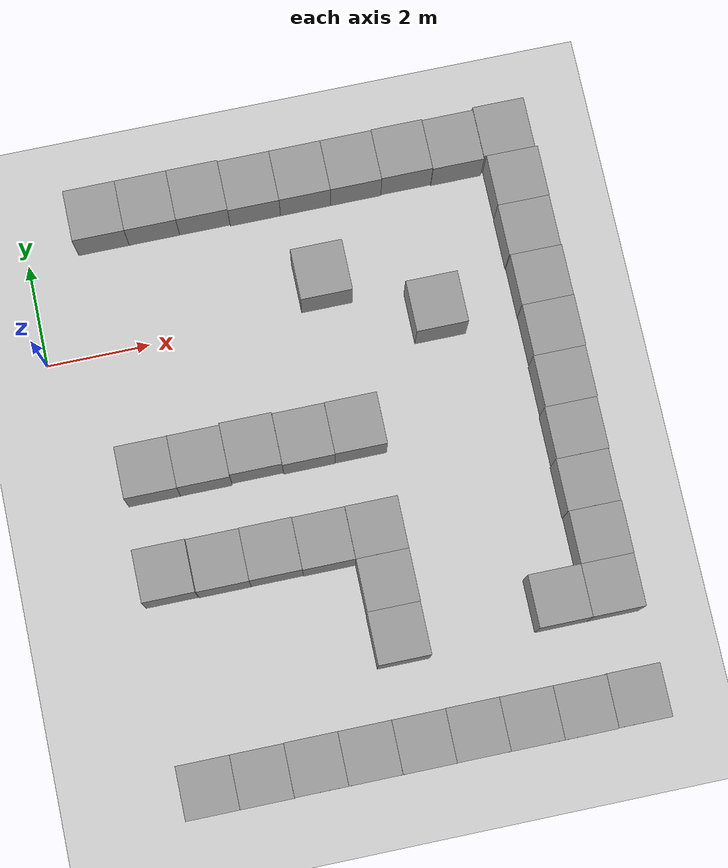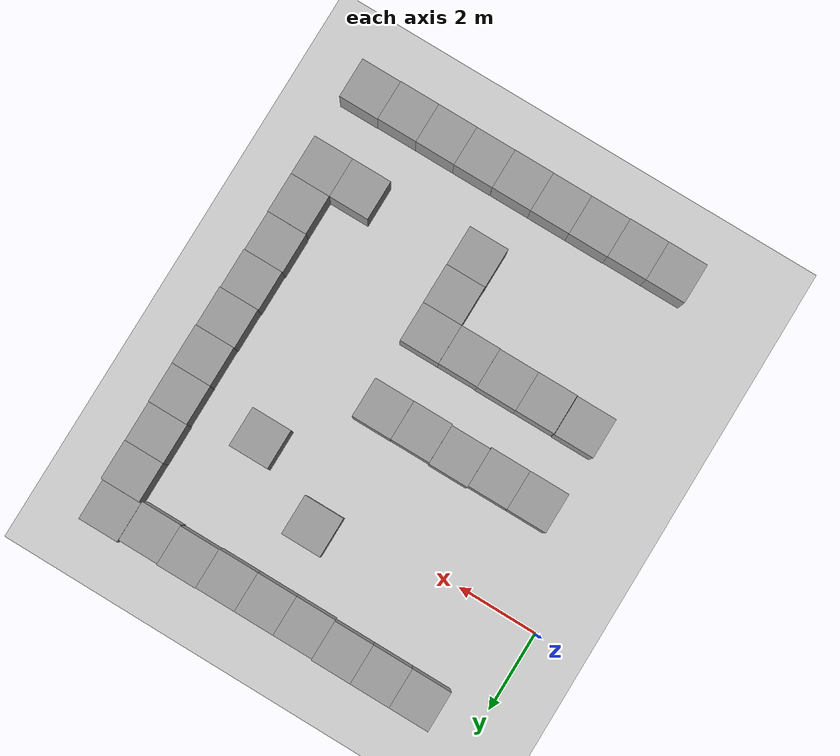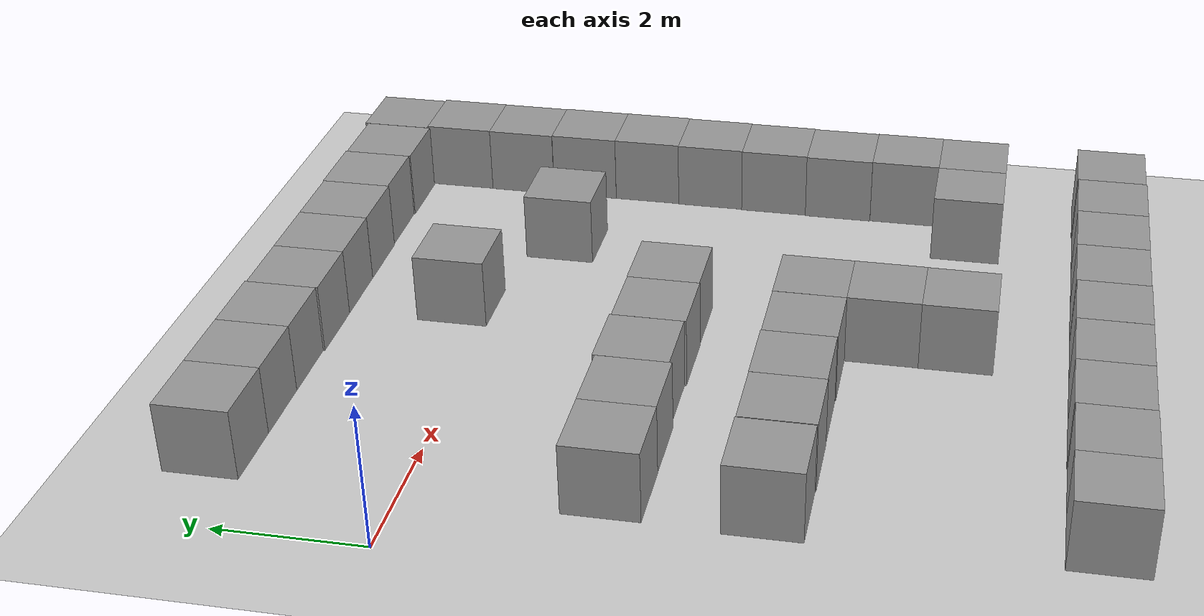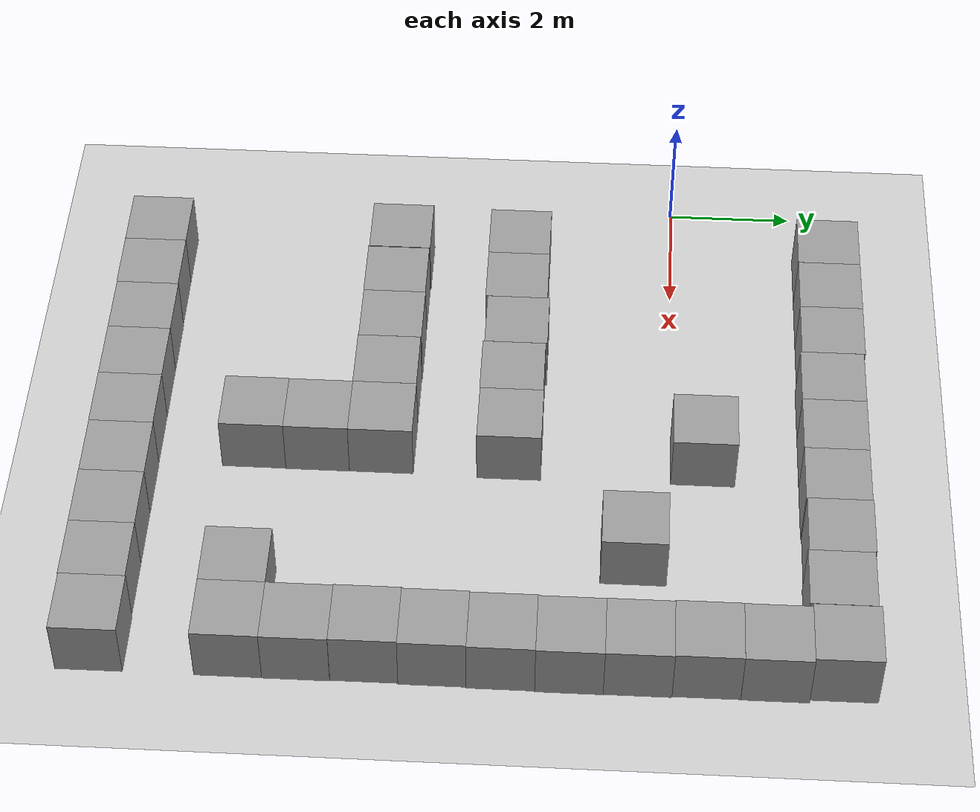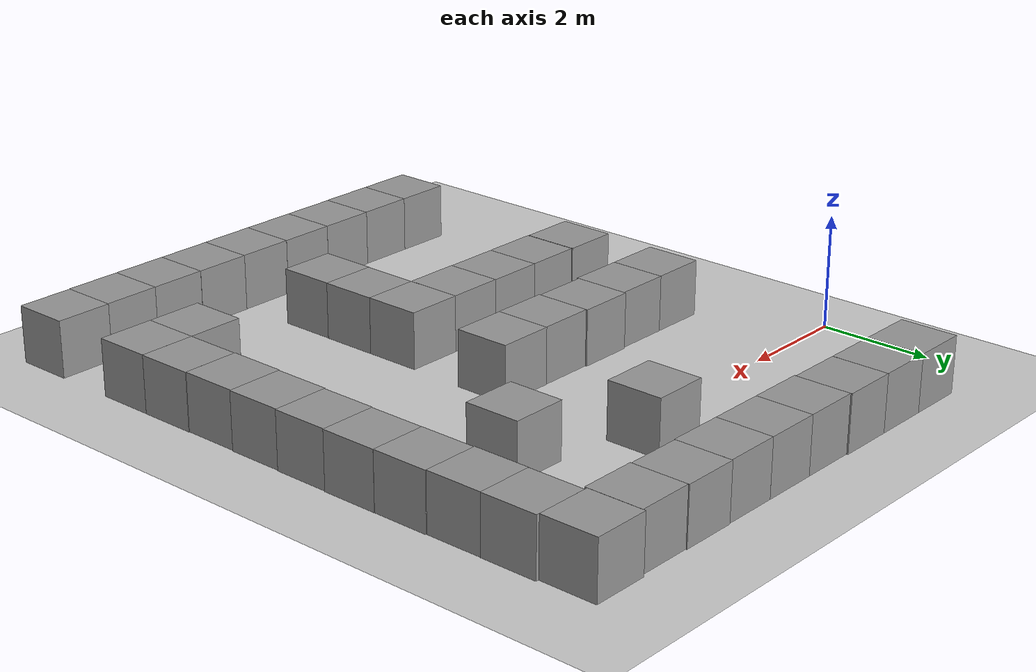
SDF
<sdf version="1.6">
 <world name="default">
  <model name="ground_plane">
   <static>1</static>
   <link name="link">
    <collision name="collision">
     <geometry><plane><normal>0 0 1</normal><size>100 100</size></plane></geometry>
     <surface>
      <contact><collide_bitmask>65535</collide_bitmask></contact>
      <friction><ode><mu>100</mu><mu2>50</mu2></ode></friction>
     </surface>
    </collision>
    <visual name="visual">
     <cast_shadows>0</cast_shadows>
     <geometry><plane><normal>0 0 1</normal><size>100 100</size></plane></geometry>
     <material>
      <script><uri>file://media/materials/scripts/gazebo.material</uri><name>Gazebo/Grey</name></script>
     </material>
    </visual>
   </link>
  </model>
  <model name="unit_box_4">
   <pose>7.51671 -8.49305 0.5 0 -0 7.2e-05</pose>
   <link name="link">
    <inertial>
     <mass>1</mass>
     <inertia>
      <ixx>0.166667</ixx>
      <ixy>0</ixy>
      <ixz>0</ixz>
      <iyy>0.166667</iyy>
      <iyz>0</iyz>
      <izz>0.166667</izz>
     </inertia>
    </inertial>
    <collision name="collision"><geometry><box><size>1 1 1</size></box></geometry></collision>
    <visual name="visual">
     <geometry><box><size>1 1 1</size></box></geometry>
     <material>
      <script><name>Gazebo/Grey</name><uri>file://media/materials/scripts/gazebo.material</uri></script>
     </material>
    </visual>
   </link>
  </model>
  <model name="unit_box_5">
   <pose>6.51666 -8.49092 0.5 0 0 -6e-06</pose>
   <link name="link">
    <inertial>
     <mass>1</mass>
     <inertia>
      <ixx>0.166667</ixx>
      <ixy>0</ixy>
      <ixz>0</ixz>
      <iyy>0.166667</iyy>
      <iyz>0</iyz>
      <izz>0.166667</izz>
     </inertia>
    </inertial>
    <collision name="collision"><geometry><box><size>1 1 1</size></box></geometry></collision>
    <visual name="visual">
     <geometry><box><size>1 1 1</size></box></geometry>
     <material>
      <script><name>Gazebo/Grey</name><uri>file://media/materials/scripts/gazebo.material</uri></script>
     </material>
    </visual>
   </link>
  </model>
  <model name="unit_box_6">
   <pose>5.51666 -8.49554 0.499995 -1e-05 0 -9e-06</pose>
   <link name="link">
    <inertial>
     <mass>1</mass>
     <inertia>
      <ixx>0.166667</ixx>
      <ixy>0</ixy>
      <ixz>0</ixz>
      <iyy>0.166667</iyy>
      <iyz>0</iyz>
      <izz>0.166667</izz>
     </inertia>
    </inertial>
    <collision name="collision"><geometry><box><size>1 1 1</size></box></geometry></collision>
    <visual name="visual">
     <geometry><box><size>1 1 1</size></box></geometry>
     <material>
      <script><name>Gazebo/Grey</name><uri>file://media/materials/scripts/gazebo.material</uri></script>
     </material>
    </visual>
   </link>
  </model>
  <model name="unit_box_7">
   <pose>4.51657 -8.49456 0.499995 -1e-05 -0 -0.000161</pose>
   <link name="link">
    <inertial>
     <mass>1</mass>
     <inertia>
      <ixx>0.166667</ixx>
      <ixy>0</ixy>
      <ixz>0</ixz>
      <iyy>0.166667</iyy>
      <iyz>0</iyz>
      <izz>0.166667</izz>
     </inertia>
    </inertial>
    <collision name="collision"><geometry><box><size>1 1 1</size></box></geometry></collision>
    <visual name="visual">
     <geometry><box><size>1 1 1</size></box></geometry>
     <material>
      <script><name>Gazebo/Grey</name><uri>file://media/materials/scripts/gazebo.material</uri></script>
     </material>
    </visual>
   </link>
  </model>
  <model name="unit_box_8">
   <pose>3.51656 -8.49374 0.5 0 -0 -0.000182</pose>
   <link name="link">
    <inertial>
     <mass>1</mass>
     <inertia>
      <ixx>0.166667</ixx>
      <ixy>0</ixy>
      <ixz>0</ixz>
      <iyy>0.166667</iyy>
      <iyz>0</iyz>
      <izz>0.166667</izz>
     </inertia>
    </inertial>
    <collision name="collision"><geometry><box><size>1 1 1</size></box></geometry></collision>
    <visual name="visual">
     <geometry><box><size>1 1 1</size></box></geometry>
     <material>
      <script><name>Gazebo/Grey</name><uri>file://media/materials/scripts/gazebo.material</uri></script>
     </material>
    </visual>
   </link>
  </model>
  <model name="unit_box_9">
   <pose>2.51649 -8.50173 0.5 0 -0 -0.000315</pose>
   <link name="link">
    <inertial>
     <mass>1</mass>
     <inertia>
      <ixx>0.166667</ixx>
      <ixy>0</ixy>
      <ixz>0</ixz>
      <iyy>0.166667</iyy>
      <iyz>0</iyz>
      <izz>0.166667</izz>
     </inertia>
    </inertial>
    <collision name="collision"><geometry><box><size>1 1 1</size></box></geometry></collision>
    <visual name="visual">
     <geometry><box><size>1 1 1</size></box></geometry>
     <material>
      <script><name>Gazebo/Grey</name><uri>file://media/materials/scripts/gazebo.material</uri></script>
     </material>
    </visual>
   </link>
  </model>
  <model name="unit_box_10">
   <pose>1.51648 -8.50193 0.5 0 0 -0.000329</pose>
   <link name="link">
    <inertial>
     <mass>1</mass>
     <inertia>
      <ixx>0.166667</ixx>
      <ixy>0</ixy>
      <ixz>0</ixz>
      <iyy>0.166667</iyy>
      <iyz>0</iyz>
      <izz>0.166667</izz>
     </inertia>
    </inertial>
    <collision name="collision"><geometry><box><size>1 1 1</size></box></geometry></collision>
    <visual name="visual">
     <geometry><box><size>1 1 1</size></box></geometry>
     <material>
      <script><name>Gazebo/Grey</name><uri>file://media/materials/scripts/gazebo.material</uri></script>
     </material>
    </visual>
   </link>
  </model>
  <model name="unit_box_33">
   <pose>1.48614 2.54241 0.5 0 -0 0.000625</pose>
   <link name="link">
    <inertial>
     <mass>1</mass>
     <inertia>
      <ixx>0.166667</ixx>
      <ixy>0</ixy>
      <ixz>0</ixz>
      <iyy>0.166667</iyy>
      <iyz>0</iyz>
      <izz>0.166667</izz>
     </inertia>
    </inertial>
    <collision name="collision"><geometry><box><size>1 1 1</size></box></geometry></collision>
    <visual name="visual">
     <geometry><box><size>1 1 1</size></box></geometry>
     <material>
      <script><name>Gazebo/Grey</name><uri>file://media/materials/scripts/gazebo.material</uri></script>
     </material>
    </visual>
   </link>
  </model>
  <model name="unit_box_34">
   <pose>2.48617 2.54318 0.5 0 -0 0.000666</pose>
   <link name="link">
    <inertial>
     <mass>1</mass>
     <inertia>
      <ixx>0.166667</ixx>
      <ixy>0</ixy>
      <ixz>0</ixz>
      <iyy>0.166667</iyy>
      <iyz>0</iyz>
      <izz>0.166667</izz>
     </inertia>
    </inertial>
    <collision name="collision"><geometry><box><size>1 1 1</size></box></geometry></collision>
    <visual name="visual">
     <geometry><box><size>1 1 1</size></box></geometry>
     <material>
      <script><name>Gazebo/Grey</name><uri>file://media/materials/scripts/gazebo.material</uri></script>
     </material>
    </visual>
   </link>
  </model>
  <model name="unit_box_35">
   <pose>3.48621 2.54399 0.499985 -1e-05 -0 0.000745</pose>
   <link name="link">
    <inertial>
     <mass>1</mass>
     <inertia>
      <ixx>0.166667</ixx>
      <ixy>0</ixy>
      <ixz>0</ixz>
      <iyy>0.166667</iyy>
      <iyz>0</iyz>
      <izz>0.166667</izz>
     </inertia>
    </inertial>
    <collision name="collision"><geometry><box><size>1 1 1</size></box></geometry></collision>
    <visual name="visual">
     <geometry><box><size>1 1 1</size></box></geometry>
     <material>
      <script><name>Gazebo/Grey</name><uri>file://media/materials/scripts/gazebo.material</uri></script>
     </material>
    </visual>
   </link>
  </model>
  <model name="unit_box_36">
   <pose>4.48625 2.52058 0.5 0 -0 0.000752</pose>
   <link name="link">
    <inertial>
     <mass>1</mass>
     <inertia>
      <ixx>0.166667</ixx>
      <ixy>0</ixy>
      <ixz>0</ixz>
      <iyy>0.166667</iyy>
      <iyz>0</iyz>
      <izz>0.166667</izz>
     </inertia>
    </inertial>
    <collision name="collision"><geometry><box><size>1 1 1</size></box></geometry></collision>
    <visual name="visual">
     <geometry><box><size>1 1 1</size></box></geometry>
     <material>
      <script><name>Gazebo/Grey</name><uri>file://media/materials/scripts/gazebo.material</uri></script>
     </material>
    </visual>
   </link>
  </model>
  <model name="unit_box_37">
   <pose>5.48625 2.52243 0.499995 1e-05 -0 0.000751</pose>
   <link name="link">
    <inertial>
     <mass>1</mass>
     <inertia>
      <ixx>0.166667</ixx>
      <ixy>0</ixy>
      <ixz>0</ixz>
      <iyy>0.166667</iyy>
      <iyz>0</iyz>
      <izz>0.166667</izz>
     </inertia>
    </inertial>
    <collision name="collision"><geometry><box><size>1 1 1</size></box></geometry></collision>
    <visual name="visual">
     <geometry><box><size>1 1 1</size></box></geometry>
     <material>
      <script><name>Gazebo/Grey</name><uri>file://media/materials/scripts/gazebo.material</uri></script>
     </material>
    </visual>
   </link>
  </model>
  <model name="unit_box_38">
   <pose>8.51671 -8.49289 0.5 0 -0 7.2e-05</pose>
   <link name="link">
    <inertial>
     <mass>1</mass>
     <inertia>
      <ixx>0.166667</ixx>
      <ixy>0</ixy>
      <ixz>0</ixz>
      <iyy>0.166667</iyy>
      <iyz>0</iyz>
      <izz>0.166667</izz>
     </inertia>
    </inertial>
    <collision name="collision"><geometry><box><size>1 1 1</size></box></geometry></collision>
    <visual name="visual">
     <geometry><box><size>1 1 1</size></box></geometry>
     <material>
      <script><name>Gazebo/Grey</name><uri>file://media/materials/scripts/gazebo.material</uri></script>
     </material>
    </visual>
   </link>
  </model>
  <model name="unit_box_39">
   <pose>6.48625 2.52296 0.499995 1e-05 -0 0.000753</pose>
   <link name="link">
    <inertial>
     <mass>1</mass>
     <inertia>
      <ixx>0.166667</ixx>
      <ixy>0</ixy>
      <ixz>0</ixz>
      <iyy>0.166667</iyy>
      <iyz>0</iyz>
      <izz>0.166667</izz>
     </inertia>
    </inertial>
    <collision name="collision"><geometry><box><size>1 1 1</size></box></geometry></collision>
    <visual name="visual">
     <geometry><box><size>1 1 1</size></box></geometry>
     <material>
      <script><name>Gazebo/Grey</name><uri>file://media/materials/scripts/gazebo.material</uri></script>
     </material>
    </visual>
   </link>
  </model>
  <model name="unit_box_40">
   <pose>7.48625 2.5373 0.5 0 -0 0.000752</pose>
   <link name="link">
    <inertial>
     <mass>1</mass>
     <inertia>
      <ixx>0.166667</ixx>
      <ixy>0</ixy>
      <ixz>0</ixz>
      <iyy>0.166667</iyy>
      <iyz>0</iyz>
      <izz>0.166667</izz>
     </inertia>
    </inertial>
    <collision name="collision"><geometry><box><size>1 1 1</size></box></geometry></collision>
    <visual name="visual">
     <geometry><box><size>1 1 1</size></box></geometry>
     <material>
      <script><name>Gazebo/Grey</name><uri>file://media/materials/scripts/gazebo.material</uri></script>
     </material>
    </visual>
   </link>
  </model>
  <model name="unit_box_41">
   <pose>8.48626 2.5204 0.499995 -1e-05 -0 0.000752</pose>
   <link name="link">
    <inertial>
     <mass>1</mass>
     <inertia>
      <ixx>0.166667</ixx>
      <ixy>0</ixy>
      <ixz>0</ixz>
      <iyy>0.166667</iyy>
      <iyz>0</iyz>
      <izz>0.166667</izz>
     </inertia>
    </inertial>
    <collision name="collision"><geometry><box><size>1 1 1</size></box></geometry></collision>
    <visual name="visual">
     <geometry><box><size>1 1 1</size></box></geometry>
     <material>
      <script><name>Gazebo/Grey</name><uri>file://media/materials/scripts/gazebo.material</uri></script>
     </material>
    </visual>
   </link>
  </model>
  <model name="unit_box_42">
   <pose>9.48835 2.57045 0.499995 0 1e-05 0.000765</pose>
   <link name="link">
    <inertial>
     <mass>1</mass>
     <inertia>
      <ixx>0.166667</ixx>
      <ixy>0</ixy>
      <ixz>0</ixz>
      <iyy>0.166667</iyy>
      <iyz>0</iyz>
      <izz>0.166667</izz>
     </inertia>
    </inertial>
    <collision name="collision"><geometry><box><size>1 1 1</size></box></geometry></collision>
    <visual name="visual">
     <geometry><box><size>1 1 1</size></box></geometry>
     <material>
      <script><name>Gazebo/Grey</name><uri>file://media/materials/scripts/gazebo.material</uri></script>
     </material>
    </visual>
   </link>
  </model>
  <model name="unit_box_43">
   <pose>9.53924 1.57039 0.5 0 -0 0.000573</pose>
   <link name="link">
    <inertial>
     <mass>1</mass>
     <inertia>
      <ixx>0.166667</ixx>
      <ixy>0</ixy>
      <ixz>0</ixz>
      <iyy>0.166667</iyy>
      <iyz>0</iyz>
      <izz>0.166667</izz>
     </inertia>
    </inertial>
    <collision name="collision"><geometry><box><size>1 1 1</size></box></geometry></collision>
    <visual name="visual">
     <geometry><box><size>1 1 1</size></box></geometry>
     <material>
      <script><name>Gazebo/Grey</name><uri>file://media/materials/scripts/gazebo.material</uri></script>
     </material>
    </visual>
   </link>
  </model>
  <model name="unit_box_44">
   <pose>9.53423 0.57037 0.499995 1e-05 0 0.000561</pose>
   <link name="link">
    <inertial>
     <mass>1</mass>
     <inertia>
      <ixx>0.166667</ixx>
      <ixy>0</ixy>
      <ixz>0</ixz>
      <iyy>0.166667</iyy>
      <iyz>0</iyz>
      <izz>0.166667</izz>
     </inertia>
    </inertial>
    <collision name="collision"><geometry><box><size>1 1 1</size></box></geometry></collision>
    <visual name="visual">
     <geometry><box><size>1 1 1</size></box></geometry>
     <material>
      <script><name>Gazebo/Grey</name><uri>file://media/materials/scripts/gazebo.material</uri></script>
     </material>
    </visual>
   </link>
  </model>
  <model name="unit_box_45">
   <pose>9.54931 -0.429615 0.499996 -9e-06 0 0.000562</pose>
   <link name="link">
    <inertial>
     <mass>1</mass>
     <inertia>
      <ixx>0.166667</ixx>
      <ixy>0</ixy>
      <ixz>0</ixz>
      <iyy>0.166667</iyy>
      <iyz>0</iyz>
      <izz>0.166667</izz>
     </inertia>
    </inertial>
    <collision name="collision"><geometry><box><size>1 1 1</size></box></geometry></collision>
    <visual name="visual">
     <geometry><box><size>1 1 1</size></box></geometry>
     <material>
      <script><name>Gazebo/Grey</name><uri>file://media/materials/scripts/gazebo.material</uri></script>
     </material>
    </visual>
   </link>
  </model>
  <model name="unit_box_46">
   <pose>9.5543 -1.42962 0.499995 9e-06 -0 0.000565</pose>
   <link name="link">
    <inertial>
     <mass>1</mass>
     <inertia>
      <ixx>0.166667</ixx>
      <ixy>0</ixy>
      <ixz>0</ixz>
      <iyy>0.166667</iyy>
      <iyz>0</iyz>
      <izz>0.166667</izz>
     </inertia>
    </inertial>
    <collision name="collision"><geometry><box><size>1 1 1</size></box></geometry></collision>
    <visual name="visual">
     <geometry><box><size>1 1 1</size></box></geometry>
     <material>
      <script><name>Gazebo/Grey</name><uri>file://media/materials/scripts/gazebo.material</uri></script>
     </material>
    </visual>
   </link>
  </model>
  <model name="unit_box_47">
   <pose>9.54231 -2.42964 0.5 0 -0 0.000541</pose>
   <link name="link">
    <inertial>
     <mass>1</mass>
     <inertia>
      <ixx>0.166667</ixx>
      <ixy>0</ixy>
      <ixz>0</ixz>
      <iyy>0.166667</iyy>
      <iyz>0</iyz>
      <izz>0.166667</izz>
     </inertia>
    </inertial>
    <collision name="collision"><geometry><box><size>1 1 1</size></box></geometry></collision>
    <visual name="visual">
     <geometry><box><size>1 1 1</size></box></geometry>
     <material>
      <script><name>Gazebo/Grey</name><uri>file://media/materials/scripts/gazebo.material</uri></script>
     </material>
    </visual>
   </link>
  </model>
  <model name="unit_box_48">
   <pose>9.52698 -3.42969 0.5 0 -0 0.00047</pose>
   <link name="link">
    <inertial>
     <mass>1</mass>
     <inertia>
      <ixx>0.166667</ixx>
      <ixy>0</ixy>
      <ixz>0</ixz>
      <iyy>0.166667</iyy>
      <iyz>0</iyz>
      <izz>0.166667</izz>
     </inertia>
    </inertial>
    <collision name="collision"><geometry><box><size>1 1 1</size></box></geometry></collision>
    <visual name="visual">
     <geometry><box><size>1 1 1</size></box></geometry>
     <material>
      <script><name>Gazebo/Grey</name><uri>file://media/materials/scripts/gazebo.material</uri></script>
     </material>
    </visual>
   </link>
  </model>
  <model name="unit_box_49">
   <pose>9.51672 -8.48319 0.5 0 -0 7.2e-05</pose>
   <link name="link">
    <inertial>
     <mass>1</mass>
     <inertia>
      <ixx>0.166667</ixx>
      <ixy>0</ixy>
      <ixz>0</ixz>
      <iyy>0.166667</iyy>
      <iyz>0</iyz>
      <izz>0.166667</izz>
     </inertia>
    </inertial>
    <collision name="collision"><geometry><box><size>1 1 1</size></box></geometry></collision>
    <visual name="visual">
     <geometry><box><size>1 1 1</size></box></geometry>
     <material>
      <script><name>Gazebo/Grey</name><uri>file://media/materials/scripts/gazebo.material</uri></script>
     </material>
    </visual>
   </link>
  </model>
  <model name="unit_box_50">
   <pose>9.51203 -4.42972 0.5 0 -0 0.00042</pose>
   <link name="link">
    <inertial>
     <mass>1</mass>
     <inertia>
      <ixx>0.166667</ixx>
      <ixy>0</ixy>
      <ixz>0</ixz>
      <iyy>0.166667</iyy>
      <iyz>0</iyz>
      <izz>0.166667</izz>
     </inertia>
    </inertial>
    <collision name="collision"><geometry><box><size>1 1 1</size></box></geometry></collision>
    <visual name="visual">
     <geometry><box><size>1 1 1</size></box></geometry>
     <material>
      <script><name>Gazebo/Grey</name><uri>file://media/materials/scripts/gazebo.material</uri></script>
     </material>
    </visual>
   </link>
  </model>
  <model name="unit_box_51">
   <pose>9.5235 -5.42992 0.499995 -1e-05 0 2.6e-05</pose>
   <link name="link">
    <inertial>
     <mass>1</mass>
     <inertia>
      <ixx>0.166667</ixx>
      <ixy>0</ixy>
      <ixz>0</ixz>
      <iyy>0.166667</iyy>
      <iyz>0</iyz>
      <izz>0.166667</izz>
     </inertia>
    </inertial>
    <collision name="collision"><geometry><box><size>1 1 1</size></box></geometry></collision>
    <visual name="visual">
     <geometry><box><size>1 1 1</size></box></geometry>
     <material>
      <script><name>Gazebo/Grey</name><uri>file://media/materials/scripts/gazebo.material</uri></script>
     </material>
    </visual>
   </link>
  </model>
  <model name="unit_box_52">
   <pose>9.52024 -6.43002 0.499995 0 1e-05 0.000119</pose>
   <link name="link">
    <inertial>
     <mass>1</mass>
     <inertia>
      <ixx>0.166667</ixx>
      <ixy>0</ixy>
      <ixz>0</ixz>
      <iyy>0.166667</iyy>
      <iyz>0</iyz>
      <izz>0.166667</izz>
     </inertia>
    </inertial>
    <collision name="collision"><geometry><box><size>1 1 1</size></box></geometry></collision>
    <visual name="visual">
     <geometry><box><size>1 1 1</size></box></geometry>
     <material>
      <script><name>Gazebo/Grey</name><uri>file://media/materials/scripts/gazebo.material</uri></script>
     </material>
    </visual>
   </link>
  </model>
  <model name="unit_box_53">
   <pose>8.52018 -6.42978 0.499995 0 1e-05 0.000194</pose>
   <link name="link">
    <inertial>
     <mass>1</mass>
     <inertia>
      <ixx>0.166667</ixx>
      <ixy>0</ixy>
      <ixz>0</ixz>
      <iyy>0.166667</iyy>
      <iyz>0</iyz>
      <izz>0.166667</izz>
     </inertia>
    </inertial>
    <collision name="collision"><geometry><box><size>1 1 1</size></box></geometry></collision>
    <visual name="visual">
     <geometry><box><size>1 1 1</size></box></geometry>
     <material>
      <script><name>Gazebo/Grey</name><uri>file://media/materials/scripts/gazebo.material</uri></script>
     </material>
    </visual>
   </link>
  </model>
  <model name="unit_box_55">
   <pose>1.47948 -4.48044 0.499995 1e-05 -0 0</pose>
   <link name="link">
    <inertial>
     <mass>1</mass>
     <inertia>
      <ixx>0.166667</ixx>
      <ixy>0</ixy>
      <ixz>0</ixz>
      <iyy>0.166667</iyy>
      <iyz>0</iyz>
      <izz>0.166667</izz>
     </inertia>
    </inertial>
    <collision name="collision"><geometry><box><size>1 1 1</size></box></geometry></collision>
    <visual name="visual">
     <geometry><box><size>1 1 1</size></box></geometry>
     <material>
      <script><name>Gazebo/Grey</name><uri>file://media/materials/scripts/gazebo.material</uri></script>
     </material>
    </visual>
   </link>
  </model>
  <model name="unit_box_56">
   <pose>2.4906 -4.49051 0.499995 -1e-05 0 0.000346</pose>
   <link name="link">
    <inertial>
     <mass>1</mass>
     <inertia>
      <ixx>0.166667</ixx>
      <ixy>0</ixy>
      <ixz>0</ixz>
      <iyy>0.166667</iyy>
      <iyz>0</iyz>
      <izz>0.166667</izz>
     </inertia>
    </inertial>
    <collision name="collision"><geometry><box><size>1 1 1</size></box></geometry></collision>
    <visual name="visual">
     <geometry><box><size>1 1 1</size></box></geometry>
     <material>
      <script><name>Gazebo/Grey</name><uri>file://media/materials/scripts/gazebo.material</uri></script>
     </material>
    </visual>
   </link>
  </model>
  <model name="unit_box_57">
   <pose>3.4906 -4.48578 0.5 0 -0 0.000346</pose>
   <link name="link">
    <inertial>
     <mass>1</mass>
     <inertia>
      <ixx>0.166667</ixx>
      <ixy>0</ixy>
      <ixz>0</ixz>
      <iyy>0.166667</iyy>
      <iyz>0</iyz>
      <izz>0.166667</izz>
     </inertia>
    </inertial>
    <collision name="collision"><geometry><box><size>1 1 1</size></box></geometry></collision>
    <visual name="visual">
     <geometry><box><size>1 1 1</size></box></geometry>
     <material>
      <script><name>Gazebo/Grey</name><uri>file://media/materials/scripts/gazebo.material</uri></script>
     </material>
    </visual>
   </link>
  </model>
  <model name="unit_box_58">
   <pose>4.49069 -4.49432 0.499995 0 1e-05 0.000439</pose>
   <link name="link">
    <inertial>
     <mass>1</mass>
     <inertia>
      <ixx>0.166667</ixx>
      <ixy>0</ixy>
      <ixz>0</ixz>
      <iyy>0.166667</iyy>
      <iyz>0</iyz>
      <izz>0.166667</izz>
     </inertia>
    </inertial>
    <collision name="collision"><geometry><box><size>1 1 1</size></box></geometry></collision>
    <visual name="visual">
     <geometry><box><size>1 1 1</size></box></geometry>
     <material>
      <script><name>Gazebo/Grey</name><uri>file://media/materials/scripts/gazebo.material</uri></script>
     </material>
    </visual>
   </link>
  </model>
  <model name="unit_box_59">
   <pose>5.49118 -4.49174 0.499995 0 -1e-05 -0.000241</pose>
   <link name="link">
    <inertial>
     <mass>1</mass>
     <inertia>
      <ixx>0.166667</ixx>
      <ixy>0</ixy>
      <ixz>0</ixz>
      <iyy>0.166667</iyy>
      <iyz>0</iyz>
      <izz>0.166667</izz>
     </inertia>
    </inertial>
    <collision name="collision"><geometry><box><size>1 1 1</size></box></geometry></collision>
    <visual name="visual">
     <geometry><box><size>1 1 1</size></box></geometry>
     <material>
      <script><name>Gazebo/Grey</name><uri>file://media/materials/scripts/gazebo.material</uri></script>
     </material>
    </visual>
   </link>
  </model>
  <model name="unit_box_60">
   <pose>5.49273 -5.49186 0.499995 1e-05 -0 -0.000284</pose>
   <link name="link">
    <inertial>
     <mass>1</mass>
     <inertia>
      <ixx>0.166667</ixx>
      <ixy>0</ixy>
      <ixz>0</ixz>
      <iyy>0.166667</iyy>
      <iyz>0</iyz>
      <izz>0.166667</izz>
     </inertia>
    </inertial>
    <collision name="collision"><geometry><box><size>1 1 1</size></box></geometry></collision>
    <visual name="visual">
     <geometry><box><size>1 1 1</size></box></geometry>
     <material>
      <script><name>Gazebo/Grey</name><uri>file://media/materials/scripts/gazebo.material</uri></script>
     </material>
    </visual>
   </link>
  </model>
  <model name="unit_box_61">
   <pose>5.48703 -6.49188 0.499995 1e-05 -0 -0.000313</pose>
   <link name="link">
    <inertial>
     <mass>1</mass>
     <inertia>
      <ixx>0.166667</ixx>
      <ixy>0</ixy>
      <ixz>0</ixz>
      <iyy>0.166667</iyy>
      <iyz>0</iyz>
      <izz>0.166667</izz>
     </inertia>
    </inertial>
    <collision name="collision"><geometry><box><size>1 1 1</size></box></geometry></collision>
    <visual name="visual">
     <geometry><box><size>1 1 1</size></box></geometry>
     <material>
      <script><name>Gazebo/Grey</name><uri>file://media/materials/scripts/gazebo.material</uri></script>
     </material>
    </visual>
   </link>
  </model>
  <model name="unit_box_28">
   <pose>5.52112 -2.49711 0.499995 -1e-05 -0 -6.9e-05</pose>
   <link name="link">
    <inertial>
     <mass>1</mass>
     <inertia>
      <ixx>0.166667</ixx>
      <ixy>0</ixy>
      <ixz>0</ixz>
      <iyy>0.166667</iyy>
      <iyz>0</iyz>
      <izz>0.166667</izz>
     </inertia>
    </inertial>
    <collision name="collision"><geometry><box><size>1 1 1</size></box></geometry></collision>
    <visual name="visual">
     <geometry><box><size>1 1 1</size></box></geometry>
     <material>
      <script><name>Gazebo/Grey</name><uri>file://media/materials/scripts/gazebo.material</uri></script>
     </material>
    </visual>
   </link>
  </model>
  <model name="unit_box_62">
   <pose>4.52103 -2.50366 0.5 0 -0 9.5e-05</pose>
   <link name="link">
    <inertial>
     <mass>1</mass>
     <inertia>
      <ixx>0.166667</ixx>
      <ixy>0</ixy>
      <ixz>0</ixz>
      <iyy>0.166667</iyy>
      <iyz>0</iyz>
      <izz>0.166667</izz>
     </inertia>
    </inertial>
    <collision name="collision"><geometry><box><size>1 1 1</size></box></geometry></collision>
    <visual name="visual">
     <geometry><box><size>1 1 1</size></box></geometry>
     <material>
      <script><name>Gazebo/Grey</name><uri>file://media/materials/scripts/gazebo.material</uri></script>
     </material>
    </visual>
   </link>
  </model>
  <model name="unit_box_63">
   <pose>3.52075 -2.47835 0.5 0 -0 4e-05</pose>
   <link name="link">
    <inertial>
     <mass>1</mass>
     <inertia>
      <ixx>0.166667</ixx>
      <ixy>0</ixy>
      <ixz>0</ixz>
      <iyy>0.166667</iyy>
      <iyz>0</iyz>
      <izz>0.166667</izz>
     </inertia>
    </inertial>
    <collision name="collision"><geometry><box><size>1 1 1</size></box></geometry></collision>
    <visual name="visual">
     <geometry><box><size>1 1 1</size></box></geometry>
     <material>
      <script><name>Gazebo/Grey</name><uri>file://media/materials/scripts/gazebo.material</uri></script>
     </material>
    </visual>
   </link>
  </model>
  <model name="unit_box_64">
   <pose>2.52061 -2.51461 0.5 0 0 -1e-05</pose>
   <link name="link">
    <inertial>
     <mass>1</mass>
     <inertia>
      <ixx>0.166667</ixx>
      <ixy>0</ixy>
      <ixz>0</ixz>
      <iyy>0.166667</iyy>
      <iyz>0</iyz>
      <izz>0.166667</izz>
     </inertia>
    </inertial>
    <collision name="collision"><geometry><box><size>1 1 1</size></box></geometry></collision>
    <visual name="visual">
     <geometry><box><size>1 1 1</size></box></geometry>
     <material>
      <script><name>Gazebo/Grey</name><uri>file://media/materials/scripts/gazebo.material</uri></script>
     </material>
    </visual>
   </link>
  </model>
  <model name="unit_box_65">
   <pose>1.52061 -2.51742 0.499995 -1e-05 -0 -6e-06</pose>
   <link name="link">
    <inertial>
     <mass>1</mass>
     <inertia>
      <ixx>0.166667</ixx>
      <ixy>0</ixy>
      <ixz>0</ixz>
      <iyy>0.166667</iyy>
      <iyz>0</iyz>
      <izz>0.166667</izz>
     </inertia>
    </inertial>
    <collision name="collision"><geometry><box><size>1 1 1</size></box></geometry></collision>
    <visual name="visual">
     <geometry><box><size>1 1 1</size></box></geometry>
     <material>
      <script><name>Gazebo/Grey</name><uri>file://media/materials/scripts/gazebo.material</uri></script>
     </material>
    </visual>
   </link>
  </model>
  <model name="unit_box_66">
   <pose>7.50544 -0.525704 0.499995 1e-05 -0 0</pose>
   <link name="link">
    <inertial>
     <mass>1</mass>
     <inertia>
      <ixx>0.166667</ixx>
      <ixy>0</ixy>
      <ixz>0</ixz>
      <iyy>0.166667</iyy>
      <iyz>0</iyz>
      <izz>0.166667</izz>
     </inertia>
    </inertial>
    <collision name="collision"><geometry><box><size>1 1 1</size></box></geometry></collision>
    <visual name="visual">
     <geometry><box><size>1 1 1</size></box></geometry>
     <material>
      <script><name>Gazebo/Grey</name><uri>file://media/materials/scripts/gazebo.material</uri></script>
     </material>
    </visual>
   </link>
  </model>
  <model name="unit_box_67">
   <pose>5.49521 0.527169 0.499995 0 1e-05 0</pose>
   <link name="link">
    <inertial>
     <mass>1</mass>
     <inertia>
      <ixx>0.166667</ixx>
      <ixy>0</ixy>
      <ixz>0</ixz>
      <iyy>0.166667</iyy>
      <iyz>0</iyz>
      <izz>0.166667</izz>
     </inertia>
    </inertial>
    <collision name="collision"><geometry><box><size>1 1 1</size></box></geometry></collision>
    <visual name="visual">
     <geometry><box><size>1 1 1</size></box></geometry>
     <material>
      <script><name>Gazebo/Grey</name><uri>file://media/materials/scripts/gazebo.material</uri></script>
     </material>
    </visual>
   </link>
  </model>
 </world>
</sdf>
